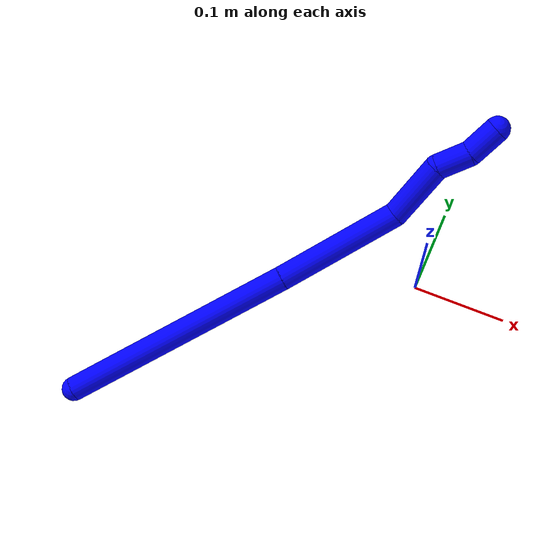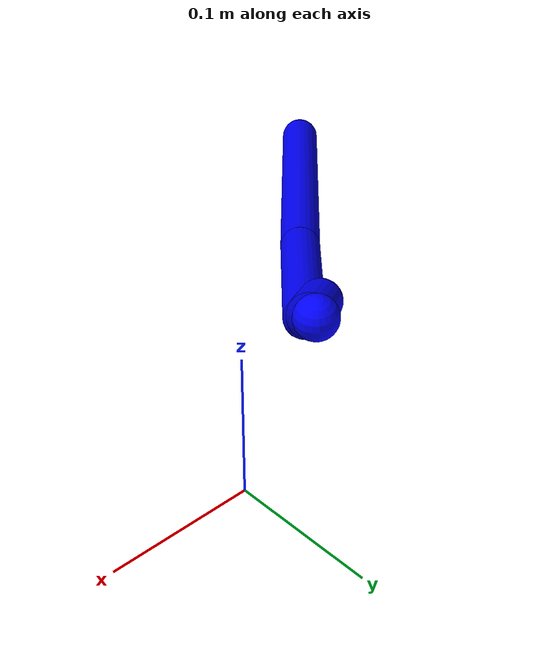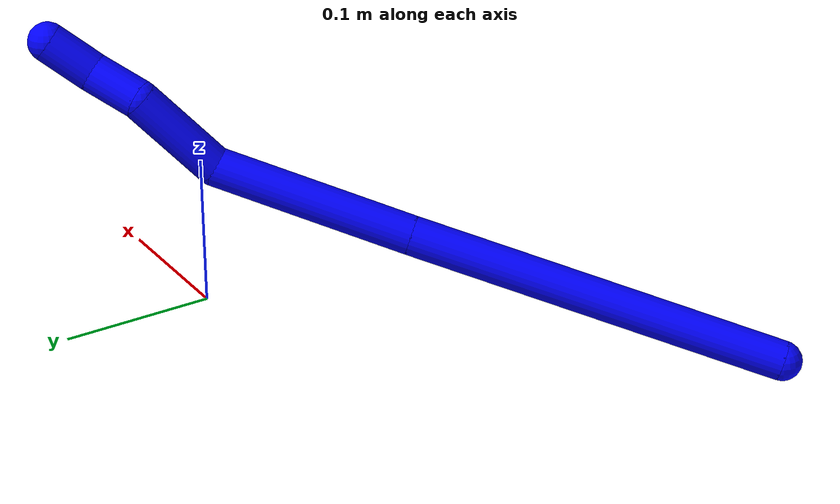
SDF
<sdf version="1.7">
 <world name="default">
  <plugin name="TubeGeneratorPlugin" filename="libtube_generator_plugin.so"/>
  <model name="photoneo_s_sensor">
   <static>1</static>
   <pose>0 0 2 1.57079 1.57079 3.14159</pose>
   <link name="link">
    <inertial><mass>0.1</mass></inertial>
    <sensor name="sensor" type="depth">
     <update_rate>30</update_rate>
     <camera>
      <horizontal_fov>1.22</horizontal_fov>
      <image><width>1920</width><height>1200</height><format>B8G8R8</format></image>
      <clip><near>0.1</near><far>4</far></clip>
      <depth_camera><output>points</output></depth_camera>
     </camera>
     <plugin name="camera_plugin" filename="libgazebo_ros_depth_camera.so">
      <baseline>0.2</baseline>
      <alwaysOn>1</alwaysOn>
      <updateRate>0.0</updateRate>
      <cameraName>camera_ir</cameraName>
      <imageTopicName>/camera/color/image_raw</imageTopicName>
      <cameraInfoTopicName>/camera/color/camera_info</cameraInfoTopicName>
      <depthImageTopicName>/camera/depth/image_raw</depthImageTopicName>
      <depthImageCameraInfoTopicName>/camera/depth/camera_info</depthImageCameraInfoTopicName>
      <pointCloudTopicName>/camera/depth/points</pointCloudTopicName>
      <frameName>fr_optical</frameName>
      <pointCloudCutoff>0.1</pointCloudCutoff>
      <pointCloudCutoffMax>2.0</pointCloudCutoffMax>
      <distortionK1>0</distortionK1>
      <distortionK2>0</distortionK2>
      <distortionK3>0</distortionK3>
      <distortionT1>0</distortionT1>
      <distortionT2>0</distortionT2>
      <CxPrime>0</CxPrime>
      <Cx>0</Cx>
      <Cy>0</Cy>
      <focalLength>0</focalLength>
      <hackBaseline>0</hackBaseline>
     </plugin>
    </sensor>
   </link>
  </model>
  <gravity>0 0 -9.8</gravity>
  <magnetic_field>6e-06 2.3e-05 -4.2e-05</magnetic_field>
  <atmosphere type="adiabatic"/>
  <physics name="default_physics" default="0" type="ode">
   <max_step_size>0.003</max_step_size>
   <real_time_factor>1</real_time_factor>
   <real_time_update_rate>1000</real_time_update_rate>
   <max_contacts>10000</max_contacts>
   <ode>
    <solver>
     <type>quick</type>
     <iters>100</iters>
     <sor>1.3</sor>
     <use_dynamic_moi_rescaling>0</use_dynamic_moi_rescaling>
    </solver>
    <constraints>
     <contact_max_correcting_vel>0</contact_max_correcting_vel>
     <contact_surface_layer>0.001</contact_surface_layer>
     <cfm>0</cfm>
     <erp>0.2</erp>
    </constraints>
   </ode>
  </physics>
  <scene><ambient>0.4 0.4 0.4 1</ambient><background>0.7 0.7 0.7 1</background><shadows>0</shadows></scene>
  <audio><device>default</device></audio>
  <spherical_coordinates>
   <surface_model>EARTH_WGS84</surface_model>
   <latitude_deg>0</latitude_deg>
   <longitude_deg>0</longitude_deg>
   <elevation>0</elevation>
   <heading_deg>0</heading_deg>
  </spherical_coordinates>
  <model name="bin">
   <static>1</static>
   <link name="bottom">
    <collision name="collision-bottom">
     <pose>0 0 -0.01 0 -0 0</pose>
     <geometry><box><size>0.8 0.6 0.02</size></box></geometry>
     <surface>
      <friction><ode><mu>100</mu><mu2>100</mu2></ode></friction>
      <contact><collide_bitmask>65535</collide_bitmask></contact>
     </surface>
    </collision>
   </link>
   <link name="west_wall">
    <collision name="collision-west_wall">
     <pose>-0.41 0 0.1 0 -0 0</pose>
     <geometry><box><size>0.02 0.6 0.2</size></box></geometry>
     <surface>
      <friction><ode><mu>100</mu><mu2>100</mu2></ode></friction>
      <contact><collide_bitmask>65535</collide_bitmask></contact>
     </surface>
    </collision>
   </link>
   <link name="east_wall">
    <collision name="collision-east_wall">
     <pose>0.41 0 0.1 0 -0 0</pose>
     <geometry><box><size>0.02 0.6 0.2</size></box></geometry>
     <surface>
      <friction><ode><mu>100</mu><mu2>100</mu2></ode></friction>
      <contact><collide_bitmask>65535</collide_bitmask></contact>
     </surface>
    </collision>
   </link>
   <link name="south_wall">
    <collision name="collision-south_wall">
     <pose>0 -0.31 0.1 0 -0 0</pose>
     <geometry><box><size>0.8 0.02 0.2</size></box></geometry>
     <surface>
      <friction><ode><mu>100</mu><mu2>100</mu2></ode></friction>
      <contact><collide_bitmask>65535</collide_bitmask></contact>
     </surface>
    </collision>
   </link>
   <link name="north_wall">
    <collision name="collision-north_wall">
     <pose>0 0.31 0.1 0 -0 0</pose>
     <geometry><box><size>0.8 0.02 0.2</size></box></geometry>
     <surface>
      <friction><ode><mu>100</mu><mu2>100</mu2></ode></friction>
      <contact><collide_bitmask>65535</collide_bitmask></contact>
     </surface>
    </collision>
   </link>
  </model>
  <model name="1">
   <static>0</static>
   <link name="1">
    <collision name="collision-cylinder-e_1_1_4">
     <pose>0.078686 0.083639 0.03662 -1.1581 0.711304 -0.47649</pose>
     <geometry><cylinder><radius>0.0125</radius><length>0.241064</length></cylinder></geometry>
     <surface>
      <friction><ode><mu>1.16</mu><mu2>1.16</mu2><slip1>0</slip1><slip2>0</slip2></ode></friction>
      <contact><ode><kp>1e+06</kp><kd>1</kd><max_vel>0</max_vel><min_depth>0.001</min_depth></ode></contact>
     </surface>
    </collision>
    <visual name="visual-cylinder-e_1_1_4">
     <pose>0.078686 0.083639 0.03662 -1.1581 0.711304 -0.47649</pose>
     <geometry><cylinder><radius>0.0125</radius><length>0.241064</length></cylinder></geometry>
     <material><ambient>0 0 1 1</ambient></material>
    </visual>
    <collision name="collision-cylinder-e_2_4_5">
     <pose>0.198434 0.212567 0.094293 -1.13566 0.688107 -0.449411</pose>
     <geometry><cylinder><radius>0.0125</radius><length>0.129312</length></cylinder></geometry>
     <surface>
      <friction><ode><mu>1.16</mu><mu2>1.16</mu2><slip1>0</slip1><slip2>0</slip2></ode></friction>
      <contact><ode><kp>1e+06</kp><kd>1</kd><max_vel>0</max_vel><min_depth>0.001</min_depth></ode></contact>
     </surface>
    </collision>
    <visual name="visual-cylinder-e_2_4_5">
     <pose>0.198434 0.212567 0.094293 -1.13566 0.688107 -0.449411</pose>
     <geometry><cylinder><radius>0.0125</radius><length>0.129312</length></cylinder></geometry>
     <material><ambient>0 0 1 1</ambient></material>
    </visual>
    <collision name="collision-cylinder-e_3_5_6">
     <pose>0.250533 0.276278 0.138555 -0.670907 0.356592 -0.125488</pose>
     <geometry><cylinder><radius>0.0125</radius><length>0.063241</length></cylinder></geometry>
     <surface>
      <friction><ode><mu>1.16</mu><mu2>1.16</mu2><slip1>0</slip1><slip2>0</slip2></ode></friction>
      <contact><ode><kp>1e+06</kp><kd>1</kd><max_vel>0</max_vel><min_depth>0.001</min_depth></ode></contact>
     </surface>
    </collision>
    <visual name="visual-cylinder-e_3_5_6">
     <pose>0.250533 0.276278 0.138555 -0.670907 0.356592 -0.125488</pose>
     <geometry><cylinder><radius>0.0125</radius><length>0.063241</length></cylinder></geometry>
     <material><ambient>0 0 1 1</ambient></material>
    </visual>
    <collision name="collision-cylinder-e_4_6_7">
     <pose>0.273901 0.30348 0.168902 -0.888264 0.828248 -0.412359</pose>
     <geometry><cylinder><radius>0.0125</radius><length>0.03347</length></cylinder></geometry>
     <surface>
      <friction><ode><mu>1.16</mu><mu2>1.16</mu2><slip1>0</slip1><slip2>0</slip2></ode></friction>
      <contact><ode><kp>1e+06</kp><kd>1</kd><max_vel>0</max_vel><min_depth>0.001</min_depth></ode></contact>
     </surface>
    </collision>
    <visual name="visual-cylinder-e_4_6_7">
     <pose>0.273901 0.30348 0.168902 -0.888264 0.828248 -0.412359</pose>
     <geometry><cylinder><radius>0.0125</radius><length>0.03347</length></cylinder></geometry>
     <material><ambient>0 0 1 1</ambient></material>
    </visual>
    <collision name="collision-cylinder-e_5_7_2">
     <pose>0.293779 0.322844 0.18613 -0.809212 0.476549 -0.207281</pose>
     <geometry><cylinder><radius>0.0125</radius><length>0.032913</length></cylinder></geometry>
     <surface>
      <friction><ode><mu>1.16</mu><mu2>1.16</mu2><slip1>0</slip1><slip2>0</slip2></ode></friction>
      <contact><ode><kp>1e+06</kp><kd>1</kd><max_vel>0</max_vel><min_depth>0.001</min_depth></ode></contact>
     </surface>
    </collision>
    <visual name="visual-cylinder-e_5_7_2">
     <pose>0.293779 0.322844 0.18613 -0.809212 0.476549 -0.207281</pose>
     <geometry><cylinder><radius>0.0125</radius><length>0.032913</length></cylinder></geometry>
     <material><ambient>0 0 1 1</ambient></material>
    </visual>
    <collision name="collision-sphere-2">
     <pose>0.301328 0.333428 0.196221 0 -0 0</pose>
     <geometry><sphere><radius>0.0125</radius></sphere></geometry>
     <surface>
      <friction><ode><mu>1.16</mu><mu2>1.16</mu2><slip1>0</slip1><slip2>0</slip2></ode></friction>
      <contact><ode><kp>1e+06</kp><kd>1</kd><max_vel>0</max_vel><min_depth>0.001</min_depth></ode></contact>
     </surface>
    </collision>
    <visual name="visual-sphere-2">
     <pose>0.301328 0.333428 0.196221 0 -0 0</pose>
     <geometry><sphere><radius>0.0125</radius></sphere></geometry>
     <material><ambient>0 0 1 1</ambient></material>
    </visual>
    <collision name="collision-sphere-7">
     <pose>0.28623 0.312261 0.176039 0 -0 0</pose>
     <geometry><sphere><radius>0.0125</radius></sphere></geometry>
     <surface>
      <friction><ode><mu>1.16</mu><mu2>1.16</mu2><slip1>0</slip1><slip2>0</slip2></ode></friction>
      <contact><ode><kp>1e+06</kp><kd>1</kd><max_vel>0</max_vel><min_depth>0.001</min_depth></ode></contact>
     </surface>
    </collision>
    <visual name="visual-sphere-7">
     <pose>0.28623 0.312261 0.176039 0 -0 0</pose>
     <geometry><sphere><radius>0.0125</radius></sphere></geometry>
     <material><ambient>0 0 1 1</ambient></material>
    </visual>
    <collision name="collision-sphere-6">
     <pose>0.261571 0.2947 0.161764 0 -0 0</pose>
     <geometry><sphere><radius>0.0125</radius></sphere></geometry>
     <surface>
      <friction><ode><mu>1.16</mu><mu2>1.16</mu2><slip1>0</slip1><slip2>0</slip2></ode></friction>
      <contact><ode><kp>1e+06</kp><kd>1</kd><max_vel>0</max_vel><min_depth>0.001</min_depth></ode></contact>
     </surface>
    </collision>
    <visual name="visual-sphere-6">
     <pose>0.261571 0.2947 0.161764 0 -0 0</pose>
     <geometry><sphere><radius>0.0125</radius></sphere></geometry>
     <material><ambient>0 0 1 1</ambient></material>
    </visual>
    <collision name="collision-sphere-5">
     <pose>0.239495 0.257856 0.115346 0 -0 0</pose>
     <geometry><sphere><radius>0.0125</radius></sphere></geometry>
     <surface>
      <friction><ode><mu>1.16</mu><mu2>1.16</mu2><slip1>0</slip1><slip2>0</slip2></ode></friction>
      <contact><ode><kp>1e+06</kp><kd>1</kd><max_vel>0</max_vel><min_depth>0.001</min_depth></ode></contact>
     </surface>
    </collision>
    <visual name="visual-sphere-5">
     <pose>0.239495 0.257856 0.115346 0 -0 0</pose>
     <geometry><sphere><radius>0.0125</radius></sphere></geometry>
     <material><ambient>0 0 1 1</ambient></material>
    </visual>
    <collision name="collision-sphere-1">
     <geometry><sphere><radius>0.0125</radius></sphere></geometry>
     <surface>
      <friction><ode><mu>1.16</mu><mu2>1.16</mu2><slip1>0</slip1><slip2>0</slip2></ode></friction>
      <contact><ode><kp>1e+06</kp><kd>1</kd><max_vel>0</max_vel><min_depth>0.001</min_depth></ode></contact>
     </surface>
    </collision>
    <visual name="visual-sphere-1">
     <geometry><sphere><radius>0.0125</radius></sphere></geometry>
     <material><ambient>0 0 1 1</ambient></material>
    </visual>
    <collision name="collision-sphere-4">
     <pose>0.157372 0.167278 0.07324 0 -0 0</pose>
     <geometry><sphere><radius>0.0125</radius></sphere></geometry>
     <surface>
      <friction><ode><mu>1.16</mu><mu2>1.16</mu2><slip1>0</slip1><slip2>0</slip2></ode></friction>
      <contact><ode><kp>1e+06</kp><kd>1</kd><max_vel>0</max_vel><min_depth>0.001</min_depth></ode></contact>
     </surface>
    </collision>
    <visual name="visual-sphere-4">
     <pose>0.157372 0.167278 0.07324 0 -0 0</pose>
     <geometry><sphere><radius>0.0125</radius></sphere></geometry>
     <material><ambient>0 0 1 1</ambient></material>
    </visual>
    <inertial>
     <pose>0.158618 0.17181 0.083125 0 -0 0</pose>
     <mass>0.5</mass>
     <inertia>
      <ixx>0.000497</ixx>
      <ixy>0</ixy>
      <ixz>0</ixz>
      <iyy>0.000435</iyy>
      <iyz>0</iyz>
      <izz>-0.001849</izz>
     </inertia>
    </inertial>
   </link>
   <pose>-0.280254 -0.251841 0.011497 -0.009207 0.040451 0.011459</pose>
  </model>
 </world>
</sdf>
